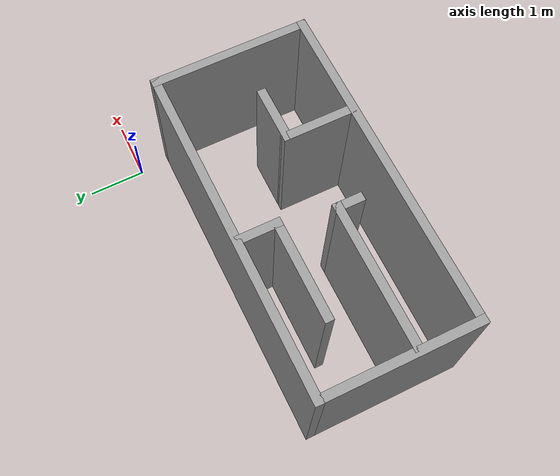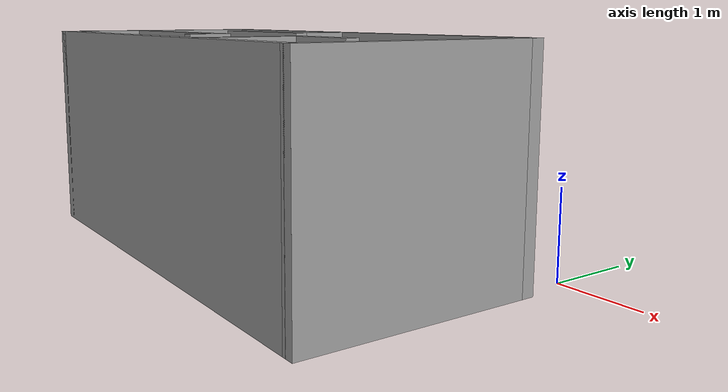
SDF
<?xml version='1.0'?>
<sdf version='1.7'>
  <model name='room'>
    <pose>-2.73 -1.6375 0 0 -0 0</pose>
    <link name='Wall_0'>
      <collision name='Wall_0_Collision'>
        <geometry>
          <box>
            <size>2.75 0.15 2.5</size>
          </box>
        </geometry>
        <pose>0 0 1.25 0 -0 0</pose>
      </collision>
      <visual name='Wall_0_Visual'>
        <pose>0 0 1.25 0 -0 0</pose>
        <geometry>
          <box>
            <size>2.75 0.15 2.5</size>
          </box>
        </geometry>
        <material>
          <script>
            <uri>file://media/materials/scripts/gazebo.material</uri>
            <name>Gazebo/Grey</name>
          </script>
          <ambient>1 1 1 1</ambient>
        </material>
        <meta>
          <layer>0</layer>
        </meta>
      </visual>
      <pose>2.8 -0.2625 0 0 -0 1.5708</pose>
    </link>
    <link name='Wall_1'>
      <collision name='Wall_1_Collision'>
        <geometry>
          <box>
            <size>5.75 0.15 2.5</size>
          </box>
        </geometry>
        <pose>0 0 1.25 0 -0 0</pose>
      </collision>
      <visual name='Wall_1_Visual'>
        <pose>0 0 1.25 0 -0 0</pose>
        <geometry>
          <box>
            <size>5.75 0.15 2.5</size>
          </box>
        </geometry>
        <material>
          <script>
            <uri>file://media/materials/scripts/gazebo.material</uri>
            <name>Gazebo/Grey</name>
          </script>
          <ambient>1 1 1 1</ambient>
        </material>
        <meta>
          <layer>0</layer>
        </meta>
      </visual>
      <pose>0 1.0375 0 0 -0 3.14159</pose>
    </link>
    <link name='Wall_11'>
      <collision name='Wall_11_Collision'>
        <geometry>
          <box>
            <size>1.25 0.15 2.5</size>
          </box>
        </geometry>
        <pose>0 0 1.25 0 -0 0</pose>
      </collision>
      <visual name='Wall_11_Visual'>
        <pose>0 0 1.25 0 -0 0</pose>
        <geometry>
          <box>
            <size>1.25 0.15 2.5</size>
          </box>
        </geometry>
        <material>
          <script>
            <uri>file://media/materials/scripts/gazebo.material</uri>
            <name>Gazebo/Grey</name>
          </script>
          <ambient>1 1 1 1</ambient>
        </material>
        <meta>
          <layer>0</layer>
        </meta>
      </visual>
      <pose>1.03 -0.9525 0 0 -0 1.5708</pose>
    </link>
    <link name='Wall_12'>
      <collision name='Wall_12_Collision'>
        <geometry>
          <box>
            <size>1 0.15 2.5</size>
          </box>
        </geometry>
        <pose>0 0 1.25 0 -0 0</pose>
      </collision>
      <visual name='Wall_12_Visual'>
        <pose>0 0 1.25 0 -0 0</pose>
        <geometry>
          <box>
            <size>1 0.15 2.5</size>
          </box>
        </geometry>
        <material>
          <script>
            <uri>file://media/materials/scripts/gazebo.material</uri>
            <name>Gazebo/Grey</name>
          </script>
          <ambient>1 1 1 1</ambient>
        </material>
        <meta>
          <layer>0</layer>
        </meta>
      </visual>
      <pose>1.455 -0.4025 0 0 -0 0</pose>
    </link>
    <link name='Wall_2'>
      <collision name='Wall_2_Collision'>
        <geometry>
          <box>
            <size>2.75 0.15 2.5</size>
          </box>
        </geometry>
        <pose>0 0 1.25 0 -0 0</pose>
      </collision>
      <visual name='Wall_2_Visual'>
        <pose>0 0 1.25 0 -0 0</pose>
        <geometry>
          <box>
            <size>2.75 0.15 2.5</size>
          </box>
        </geometry>
        <material>
          <script>
            <uri>file://media/materials/scripts/gazebo.material</uri>
            <name>Gazebo/Grey</name>
          </script>
          <ambient>1 1 1 1</ambient>
        </material>
        <meta>
          <layer>0</layer>
        </meta>
      </visual>
      <pose>-2.8 -0.2625 0 0 -0 -1.5708</pose>
    </link>
    <link name='Wall_3'>
      <collision name='Wall_3_Collision'>
        <geometry>
          <box>
            <size>5.75 0.15 2.5</size>
          </box>
        </geometry>
        <pose>0 0 1.25 0 -0 0</pose>
      </collision>
      <visual name='Wall_3_Visual'>
        <pose>0 0 1.25 0 -0 0</pose>
        <geometry>
          <box>
            <size>5.75 0.15 2.5</size>
          </box>
        </geometry>
        <material>
          <script>
            <uri>file://media/materials/scripts/gazebo.material</uri>
            <name>Gazebo/Grey</name>
          </script>
          <ambient>1 1 1 1</ambient>
        </material>
        <meta>
          <layer>0</layer>
        </meta>
      </visual>
      <pose>0 -1.5625 0 0 -0 0</pose>
    </link>
    <link name='Wall_5'>
      <collision name='Wall_5_Collision'>
        <geometry>
          <box>
            <size>0.75 0.15 2.5</size>
          </box>
        </geometry>
        <pose>0 0 1.25 0 -0 0</pose>
      </collision>
      <visual name='Wall_5_Visual'>
        <pose>0 0 1.25 0 -0 0</pose>
        <geometry>
          <box>
            <size>0.75 0.15 2.5</size>
          </box>
        </geometry>
        <material>
          <script>
            <uri>file://media/materials/scripts/gazebo.material</uri>
            <name>Gazebo/Grey</name>
          </script>
          <ambient>1 1 1 1</ambient>
        </material>
        <meta>
          <layer>0</layer>
        </meta>
      </visual>
      <pose>-0.22 0.6775 0 0 -0 -1.5708</pose>
    </link>
    <link name='Wall_6'>
      <collision name='Wall_6_Collision'>
        <geometry>
          <box>
            <size>1.75 0.15 2.5</size>
          </box>
        </geometry>
        <pose>0 0 1.25 0 -0 0</pose>
      </collision>
      <visual name='Wall_6_Visual'>
        <pose>0 0 1.25 0 -0 0</pose>
        <geometry>
          <box>
            <size>1.75 0.15 2.5</size>
          </box>
        </geometry>
        <material>
          <script>
            <uri>file://media/materials/scripts/gazebo.material</uri>
            <name>Gazebo/Grey</name>
          </script>
          <ambient>1 1 1 1</ambient>
        </material>
        <meta>
          <layer>0</layer>
        </meta>
      </visual>
      <pose>-1.02 0.3775 0 0 -0 3.14159</pose>
    </link>
    <link name='Wall_8'>
      <collision name='Wall_8_Collision'>
        <geometry>
          <box>
            <size>2.5 0.15 2.5</size>
          </box>
        </geometry>
        <pose>0 0 1.25 0 -0 0</pose>
      </collision>
      <visual name='Wall_8_Visual'>
        <pose>0 0 1.25 0 -0 0</pose>
        <geometry>
          <box>
            <size>2.5 0.15 2.5</size>
          </box>
        </geometry>
        <material>
          <script>
            <uri>file://media/materials/scripts/gazebo.material</uri>
            <name>Gazebo/Grey</name>
          </script>
          <ambient>1 1 1 1</ambient>
        </material>
        <meta>
          <layer>0</layer>
        </meta>
      </visual>
      <pose>-1.555 -0.5525 0 0 -0 0</pose>
    </link>
    <link name='Wall_9'>
      <collision name='Wall_9_Collision'>
        <geometry>
          <box>
            <size>0.5 0.15 2.5</size>
          </box>
        </geometry>
        <pose>0 0 1.25 0 -0 0</pose>
      </collision>
      <visual name='Wall_9_Visual'>
        <pose>0 0 1.25 0 -0 0</pose>
        <geometry>
          <box>
            <size>0.5 0.15 2.5</size>
          </box>
        </geometry>
        <material>
          <script>
            <uri>file://media/materials/scripts/gazebo.material</uri>
            <name>Gazebo/Grey</name>
          </script>
          <ambient>1 1 1 1</ambient>
        </material>
        <meta>
          <layer>0</layer>
        </meta>
      </visual>
      <pose>-0.38 -0.7275 0 0 -0 -1.5708</pose>
    </link>
    <static>1</static>
  </model>
</sdf>
